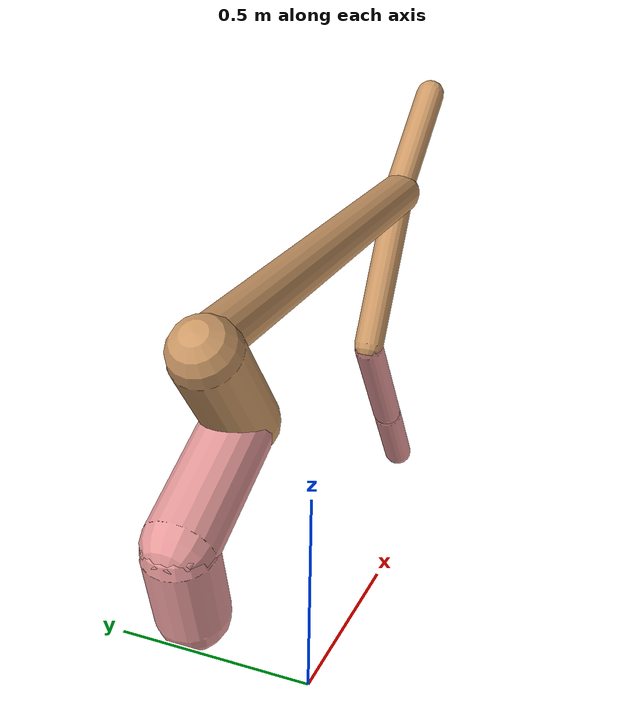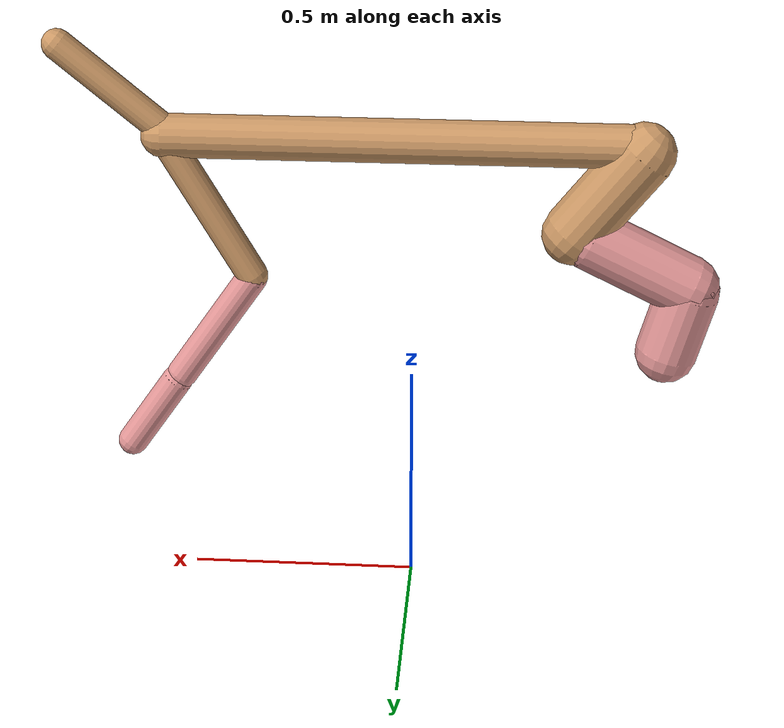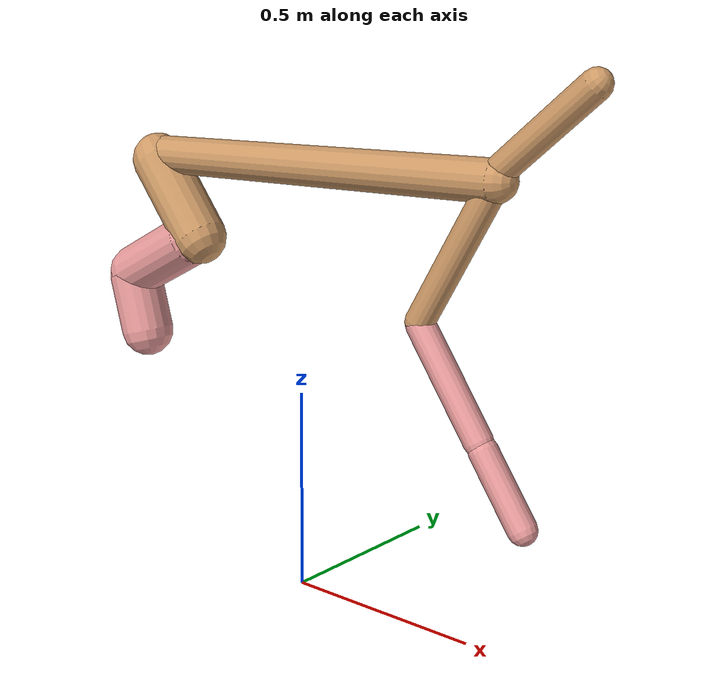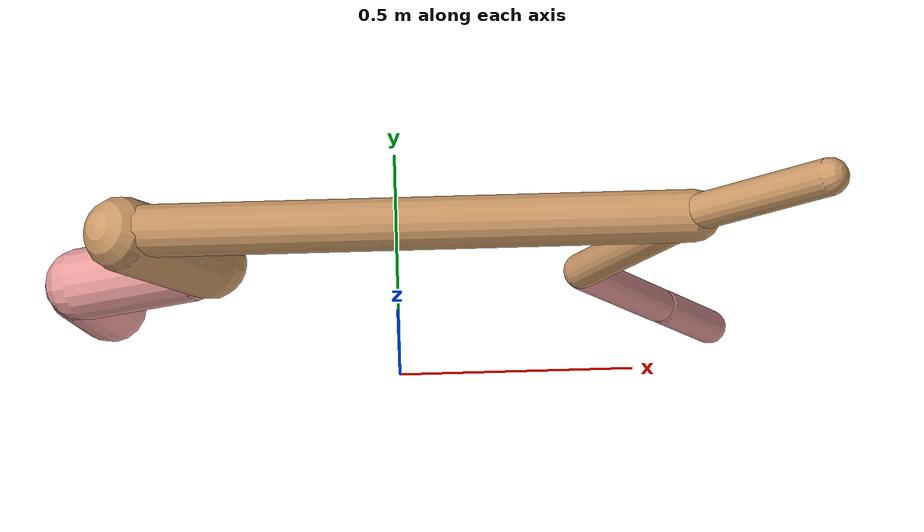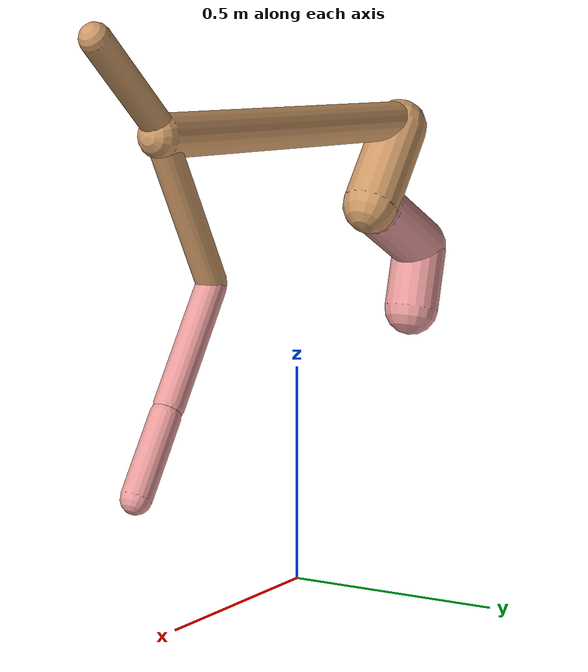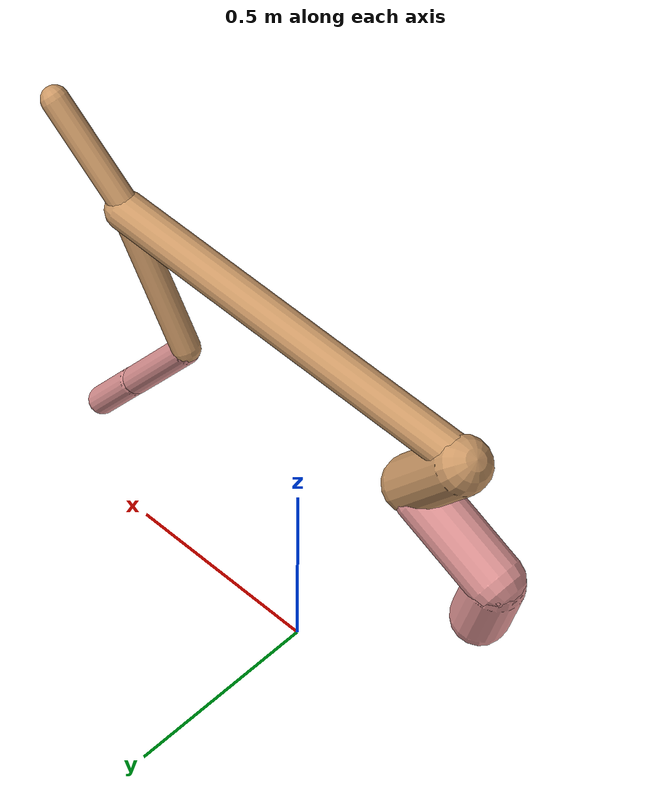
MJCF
<mujoco model="cheetah">
  <compiler angle="radian" coordinate="local" inertiafromgeom="true" settotalmass="14" />
  <default>
    <joint armature=".1" damping=".01" limited="true" solimplimit="0 .8 .03" solreflimit=".02 1" stiffness="8" />
    <geom conaffinity="0" condim="3" contype="1" friction="0.8 .1 .1" rgba="0.8 0.6 .4 1" solimp="0.0 0.8 0.01" solref="0.02 1" />
    <motor ctrllimited="true" ctrlrange="-1 1" />
  </default>
  <size nstack="300000" nuser_geom="1" />
  <option gravity="0 0 -9.81" timestep="0.01" />
  <worldbody>
    <body name="torso" pos="0.0 0.0 1.0505982795641053">
      <joint armature="0" axis="1 0 0" damping="0" limited="false" name="ignorex" pos="0 0 0" stiffness="0" type="slide" />
      <joint armature="0" axis="0 0 1" damping="0" limited="false" name="ignorez" pos="0 0 0" stiffness="0" type="slide" />
      <joint armature="0" axis="0 1 0" damping="0" limited="false" name="ignorey" pos="0 0 0" stiffness="0" type="hinge" />
      <geom fromto="-0.5 0.0 0.0 0.5350666226636102 0.0 0.0" name="torso" size="0.04743591024839913" type="capsule" />
      <geom axisangle="0 1 0 .87" name="head" pos="0.63506662266361 0.0 0.1" size="0.03342674740863745 0.15" type="capsule" />

      <body name="bthigh" pos="-.5 0 0">
        <joint axis="0 1 0" damping="6" name="bthigh" pos="0 0 0" range="-.52 1.05" stiffness="240" type="hinge" />
        <geom axisangle="0 1 0 -3.8" name="bthigh" pos="0.08333687773896623 0.0 -0.1083379410606561" size="0.06839658632588198 0.1176704474793719" type="capsule" />
        <body name="bshin" pos="0.12667375547793244 0.0 -0.2066758821213122">
          <joint axis="0 1 0" damping="4.5" name="bshin" pos="0 0 0" range="-.785 .785" stiffness="180" type="hinge" />
          <geom axisangle="0 1 0 -2.03" name="bshin" pos="-0.11471279838726547 0.0 -0.05735639919363274" rgba="0.9 0.6 0.6 1" size="0.06839658632588198 0.12172804911659163" type="capsule" />
          <body name="bfoot" pos="-0.22942559677453095 0.0 -0.11471279838726547">
            <joint axis="0 1 0" damping="3" name="bfoot" pos="0 0 0" range="-.4 .785" stiffness="120" type="hinge" />
            <geom axisangle="0 1 0 -.27" name="bfoot" pos="0.024765136557101497 0.0 -0.08007394153462817" rgba="0.9 0.6 0.6 1" size="0.06839658632588198 0.07628291077973076" type="capsule" />
            <inertial mass="10" />
          </body>
        </body>
      </body>
      <body name="fthigh" pos="0.53506662266361 0.0 0.0">
        <joint axis="0 1 0" damping="4.5" name="fthigh" pos="0 0 0" range="-1.5 0.8" stiffness="180" type="hinge" />
        <geom axisangle="0 1 0 .52" name="fthigh" pos="-0.09457666302430527 0.0 -0.16213142232738043" size="0.034058593725467774 0.181775702073249" type="capsule" />
        <body name="fshin" pos="-0.18915332604861054 0.0 -0.32426284465476085">
          <joint axis="0 1 0" damping="3" name="fshin" pos="0 0 0" range="-1.2 1.1" stiffness="120" type="hinge" />
          <geom axisangle="0 1 0 -.6" name="fshin" pos="0.08776028239870287 0.0 -0.12151423716743473" rgba="0.9 0.6 0.6 1" size="0.034058593725467774 0.1448738678177774" type="capsule" />
          <body name="ffoot" pos="0.17552056479740574 0.0 -0.24302847433486946">
            <joint axis="0 1 0" damping="1.5" name="ffoot" pos="0 0 0" range="-3.1 -0.3" stiffness="60" type="hinge" />
            <geom axisangle="0 1 0 -.6" name="ffoot" pos="0.05888201640408155 0.0 -0.09159424773968242" rgba="0.9 0.6 0.6 1" size="0.034058593725467774 0.09567142214381527" type="capsule" />
            <inertial mass="10" />
          </body>
        </body>
      </body>
    </body>
  </worldbody>
  <actuator>
    <motor gear="120" joint="bthigh" name="bthigh" />
    <motor gear="90" joint="bshin" name="bshin" />
    <motor gear="60" joint="bfoot" name="bfoot" />
    <motor gear="120" joint="fthigh" name="fthigh" />
    <motor gear="60" joint="fshin" name="fshin" />
    <motor gear="30" joint="ffoot" name="ffoot" />
  </actuator>
</mujoco>
